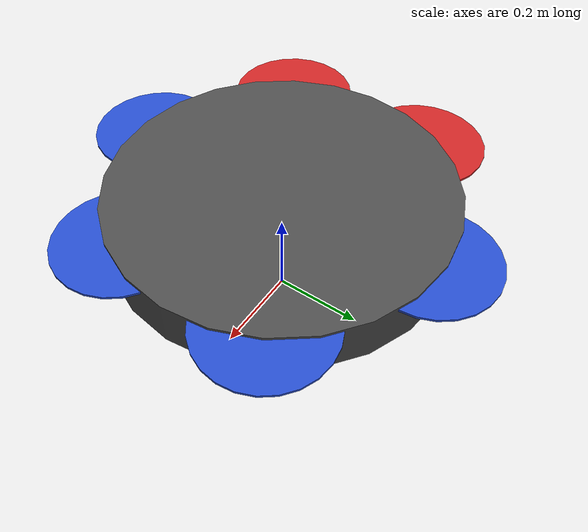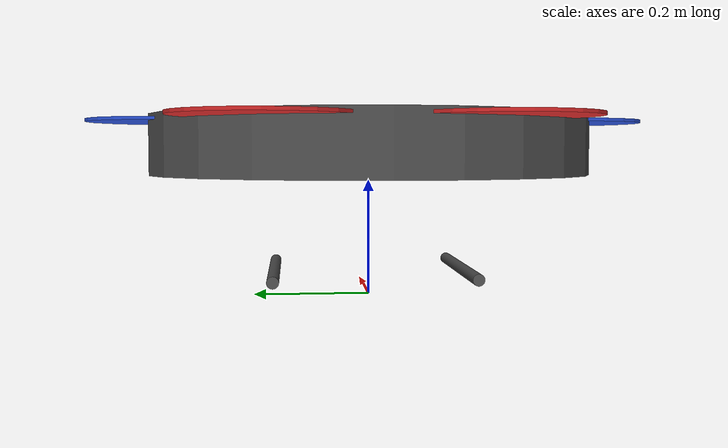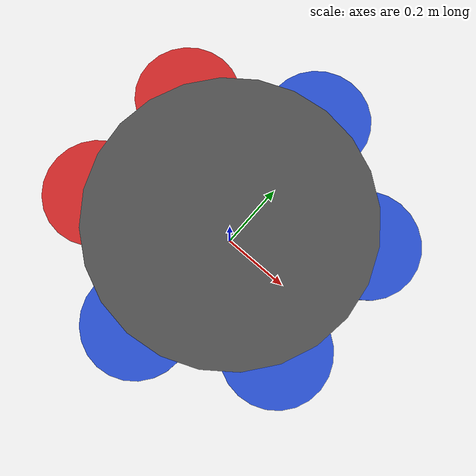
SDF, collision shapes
<sdf version='1.5'>
  <model name='peach_uav'>
    <!-- Peach H X body -->
    <pose>0 0 0.26 0 0 3.1415927</pose>
    <link name='base_link'>
      <pose>0 0 0 0 0 0</pose>
      <inertial>
        <pose>0 0 -0.008927 0 -0 0</pose>
        <mass>2.534</mass>
        <inertia>
          <ixx>0.0598893</ixx>
          <ixy>0</ixy>
          <ixz>0</ixz>
          <iyy>0.0617979</iyy>
          <iyz>0</iyz>
          <izz>0.0983314</izz>
        </inertia>
      </inertial>
      <collision name='base_link_collision'>
        <pose>0 0 0.0 0 0 0</pose>
        <geometry>
          <cylinder>
            <length>0.1</length>
            <radius>0.375</radius>
          </cylinder>
        </geometry>
        <surface>
          <contact>
            <ode>
              <min_depth>0.001</min_depth>
              <max_vel>0</max_vel>
            </ode>
          </contact>
          <friction>
            <ode/>
          </friction>
        </surface>
      </collision>
      <collision name='base_link_fixed_joint_lump__landinggear_leg_left_collision_1'>
        <pose frame=''>0 -0.165 -0.2175 3.14159 1.57079 3.14159</pose>
        <geometry>
          <cylinder>
            <length>0.3</length>
            <radius>0.01</radius>
          </cylinder>
        </geometry>
        <surface>
          <friction>
            <ode>
              <mu>1</mu>
              <mu2>1</mu2>
            </ode>
          </friction>
          <contact>
            <ode>
              <kp>1e+08</kp>
              <kd>1</kd>
              <max_vel>0.01</max_vel>
              <min_depth>0.001</min_depth>
            </ode>
          </contact>
        </surface>
      </collision>
      <collision name='base_link_fixed_joint_lump__landinggear_leg_right_collision_2'>
        <pose frame=''>0 0.165 -0.2175 3.14159 1.57079 3.14159</pose>
        <geometry>
          <cylinder>
            <length>0.3</length>
            <radius>0.01</radius>
          </cylinder>
        </geometry>
        <surface>
          <friction>
            <ode>
              <mu>1</mu>
              <mu2>1</mu2>
            </ode>
          </friction>
          <contact>
            <ode>
              <kp>1e+08</kp>
              <kd>1</kd>
              <max_vel>0.01</max_vel>
              <min_depth>0.001</min_depth>
            </ode>
          </contact>
        </surface>
      </collision>

      <visual name='base_link_visual'>
        <pose>0 0 0 1.5708 -0 -3.14159</pose>
        <geometry>
          <mesh>
            <scale>1 1 1</scale>
            <uri>model://peach_uav/meshes/tarot_iron_man_6800_full_meter.stl</uri>

          </mesh>
        </geometry>
        <material>
          <script>
            <name>Gazebo/DarkGrey</name>
            <uri>file://media/materials/scripts/gazebo.material</uri>
          </script>
        </material>
      </visual>

      <gravity>1</gravity>
      <velocity_decay/>
      <self_collide>0</self_collide>
    </link>

    <link name='peach_uav/imu_link'>
      <pose>0 0 0 0 0 3.1415927</pose>
      <inertial>
        <pose>0 0 0 0 0 0</pose>
        <mass>0.015</mass>
        <inertia>
          <ixx>1e-05</ixx>
          <ixy>0</ixy>
          <ixz>0</ixz>
          <iyy>1e-05</iyy>
          <iyz>0</iyz>
          <izz>1e-05</izz>
        </inertia>
      </inertial>
    </link>
    <joint name='peach_uav/imu_joint' type='revolute'>
      <child>peach_uav/imu_link</child>
      <parent>base_link</parent>
      <axis>
        <xyz>1 0 0</xyz>
        <limit>
          <lower>0</lower>
          <upper>0</upper>
          <effort>0</effort>
          <velocity>0</velocity>
        </limit>
        <dynamics>
          <spring_reference>0</spring_reference>
          <spring_stiffness>0</spring_stiffness>
        </dynamics>
        <use_parent_model_frame>1</use_parent_model_frame>
      </axis>
    </joint>
    <link name='rotor_3'>
      <pose>0.2966 0.1712 0.04175 0 -0 0</pose>
      <inertial>
        <pose>0 0 0 0 0 0</pose>
        <mass>0.0079</mass>
        <inertia>
          <ixx>9.75e-07</ixx>
          <ixy>0</ixy>
          <ixz>0</ixz>
          <iyy>4e-05</iyy>
          <iyz>0</iyz>
          <izz>4e-05</izz>
        </inertia>
      </inertial>
      <collision name='rotor_3_collision'>
        <pose>0 0 0 0 0 0</pose>
        <geometry>
          <cylinder>
            <length>0.005</length>
            <radius>0.1379</radius>
          </cylinder>
        </geometry>
        <surface>
          <contact>
            <ode/>
          </contact>
          <friction>
            <ode/>
          </friction>
        </surface>
      </collision>
      <visual name='rotor_3_visual'>
        <pose>0 0 0 1.5708 -0 0</pose>
        <geometry>
          <mesh>
            <scale>1 1 1</scale>
            <uri>model://peach_uav/meshes/prop_ccw.stl</uri>

          </mesh>
        </geometry>
        <material>
          <script>
            <name>Gazebo/Red</name>
            <uri>file://media/materials/scripts/gazebo.material</uri>
          </script>
        </material>
      </visual>
      <gravity>1</gravity>
      <velocity_decay/>
      <self_collide>0</self_collide>
    </link>
    <joint name='rotor_3_joint' type='revolute'>
      <child>rotor_3</child>
      <parent>base_link</parent>
      <axis>
        <xyz>0 0 1</xyz>
        <limit>
          <lower>-1e+16</lower>
          <upper>1e+16</upper>
          <effort>10</effort>
          <velocity>-1</velocity>
        </limit>
        <dynamics>
          <damping>0.005</damping>
        </dynamics>
        <use_parent_model_frame>1</use_parent_model_frame>
      </axis>
      <physics>
        <ode>
          <implicit_spring_damper>1</implicit_spring_damper>
        </ode>
      </physics>
    </joint>
    <link name='rotor_5'>
      <pose>-0.2966 0.1712 0.04175 0 -0 0</pose>
      <inertial>
        <pose>0 0 0 0 0 0</pose>
        <mass>0.0079</mass>
        <inertia>
          <ixx>9.75e-07</ixx>
          <ixy>0</ixy>
          <ixz>0</ixz>
          <iyy>4e-05</iyy>
          <iyz>0</iyz>
          <izz>4e-05</izz>
        </inertia>
      </inertial>
      <collision name='rotor_5_collision'>
        <pose>0 0 0 0 0 0</pose>
        <geometry>
          <cylinder>
            <length>0.005</length>
            <radius>0.1379</radius>
          </cylinder>
        </geometry>
        <surface>
          <contact>
            <ode/>
          </contact>
          <friction>
            <ode/>
          </friction>
        </surface>
      </collision>
      <visual name='rotor_5_visual'>
        <pose>0 0 0 1.5708 -0 0</pose>
        <geometry>
          <mesh>
            <scale>1 1 1</scale>
            <uri>model://peach_uav/meshes/prop_ccw.stl</uri>
          </mesh>
        </geometry>
        <material>
          <script>
            <name>Gazebo/Blue</name>
            <uri>file://media/materials/scripts/gazebo.material</uri>
          </script>
        </material>
      </visual>
      <gravity>1</gravity>
      <velocity_decay/>
      <self_collide>0</self_collide>
    </link>
    <joint name='rotor_5_joint' type='revolute'>
      <child>rotor_5</child>
      <parent>base_link</parent>
      <axis>
        <xyz>0 0 1</xyz>
        <limit>
          <lower>-1e+16</lower>
          <upper>1e+16</upper>
          <effort>10</effort>
          <velocity>-1</velocity>
        </limit>
        <dynamics>
          <damping>0.005</damping>
        </dynamics>
        <use_parent_model_frame>1</use_parent_model_frame>
      </axis>
      <physics>
        <ode>
          <implicit_spring_damper>1</implicit_spring_damper>
        </ode>
      </physics>
    </joint>
    <link name='rotor_4'>
      <pose>0 0.3425 0.04175 0 -0 0</pose>
      <inertial>
        <pose>0 0 0 0 0 0</pose>
        <mass>0.0079</mass>
        <inertia>
          <ixx>9.75e-07</ixx>
          <ixy>0</ixy>
          <ixz>0</ixz>
          <iyy>4e-05</iyy>
          <iyz>0</iyz>
          <izz>4e-05</izz>
        </inertia>
      </inertial>
      <collision name='rotor_4_collision'>
        <pose>0 0 0 0 0 0</pose>
        <geometry>
          <cylinder>
            <length>0.005</length>
            <radius>0.1379</radius>
          </cylinder>
        </geometry>
        <surface>
          <contact>
            <ode/>
          </contact>
          <friction>
            <ode/>
          </friction>
        </surface>
      </collision>
      <visual name='rotor_4_visual'>
        <pose>0 0 0 1.5708 -0 0</pose>
        <geometry>
          <mesh>
            <scale>1 1 1</scale>
            <uri>model://peach_uav/meshes/prop_cw.stl</uri>
          </mesh>
        </geometry>
        <material>
          <script>
            <name>Gazebo/Blue</name>
            <uri>file://media/materials/scripts/gazebo.material</uri>
          </script>
        </material>
      </visual>
      <gravity>1</gravity>
      <velocity_decay/>
      <self_collide>0</self_collide>
    </link>
    <joint name='rotor_4_joint' type='revolute'>
      <child>rotor_4</child>
      <parent>base_link</parent>
      <axis>
        <xyz>0 0 1</xyz>
        <limit>
          <lower>-1e+16</lower>
          <upper>1e+16</upper>
          <effort>10</effort>
          <velocity>-1</velocity>
        </limit>
        <dynamics>
          <damping>0.005</damping>
        </dynamics>
        <use_parent_model_frame>1</use_parent_model_frame>
      </axis>
      <physics>
        <ode>
          <implicit_spring_damper>1</implicit_spring_damper>
        </ode>
      </physics>
    </joint>
    <link name='rotor_2'>
      <pose>0.2966 -0.1712 0.04175 0 -0 0</pose>
      <inertial>
        <pose>0 0 0 0 0 0</pose>
        <mass>0.0079</mass>
        <inertia>
          <ixx>9.75e-07</ixx>
          <ixy>0</ixy>
          <ixz>0</ixz>
          <iyy>4e-05</iyy>
          <iyz>0</iyz>
          <izz>4e-05</izz>
        </inertia>
      </inertial>
      <collision name='rotor_2_collision'>
        <pose>0 0 0 0 0 0</pose>
        <geometry>
          <cylinder>
            <length>0.005</length>
            <radius>0.1379</radius>
          </cylinder>
        </geometry>
        <surface>
          <contact>
            <ode/>
          </contact>
          <friction>
            <ode/>
          </friction>
        </surface>
      </collision>
      <visual name='rotor_2_visual'>
        <pose>0 0 0 1.5708 -0 0</pose>
        <geometry>
          <mesh>
            <scale>1 1 1</scale>
            <uri>model://peach_uav/meshes/prop_cw.stl</uri>
          </mesh>
        </geometry>
        <material>
          <script>
            <name>Gazebo/Red</name>
            <uri>file://media/materials/scripts/gazebo.material</uri>
          </script>
        </material>
      </visual>
      <gravity>1</gravity>
      <velocity_decay/>
      <self_collide>0</self_collide>
    </link>
    <joint name='rotor_2_joint' type='revolute'>
      <child>rotor_2</child>
      <parent>base_link</parent>
      <axis>
        <xyz>0 0 1</xyz>
        <limit>
          <lower>-1e+16</lower>
          <upper>1e+16</upper>
          <effort>10</effort>
          <velocity>-1</velocity>
        </limit>
        <dynamics>
          <damping>0.005</damping>
        </dynamics>
        <use_parent_model_frame>1</use_parent_model_frame>
      </axis>
      <physics>
        <ode>
          <implicit_spring_damper>1</implicit_spring_damper>
        </ode>
      </physics>
    </joint>

    <link name='rotor_1'>
      <pose>0 -0.3425 0.04175 0 -0 0</pose>
      <inertial>
        <pose>0 0 0 0 0 0</pose>
        <mass>0.0079</mass>
        <inertia>
          <ixx>9.75e-07</ixx>
          <ixy>0</ixy>
          <ixz>0</ixz>
          <iyy>4e-05</iyy>
          <iyz>0</iyz>
          <izz>4e-05</izz>
        </inertia>
      </inertial>
      <collision name='rotor_1_collision'>
        <pose>0 0 0 0 0 0</pose>
        <geometry>
          <cylinder>
            <length>0.005</length>
            <radius>0.1379</radius>
          </cylinder>
        </geometry>
        <surface>
          <contact>
            <ode/>
          </contact>
          <friction>
            <ode/>
          </friction>
        </surface>
      </collision>
      <visual name='rotor_1_visual'>
        <pose>0 0 0 1.5708 -0 0</pose>
        <geometry>
          <mesh>
            <scale>1 1 1</scale>
            <uri>model://peach_uav/meshes/prop_ccw.stl</uri>
          </mesh>
        </geometry>
        <material>
          <script>
            <name>Gazebo/Blue</name>
            <uri>file://media/materials/scripts/gazebo.material</uri>
          </script>
        </material>
      </visual>
      <gravity>1</gravity>
      <velocity_decay/>
      <self_collide>0</self_collide>
    </link>
    <joint name='rotor_1_joint' type='revolute'>
      <child>rotor_1</child>
      <parent>base_link</parent>
      <axis>
        <xyz>0 0 1</xyz>
        <limit>
          <lower>-1e+16</lower>
          <upper>1e+16</upper>
          <effort>10</effort>
          <velocity>-1</velocity>
        </limit>
        <dynamics>
          <damping>0.005</damping>
        </dynamics>
        <use_parent_model_frame>1</use_parent_model_frame>
      </axis>
      <physics>
        <ode>
          <implicit_spring_damper>1</implicit_spring_damper>
        </ode>
      </physics>
    </joint>
    <link name='rotor_0'>
      <pose>-0.2966 -0.1712 0.04175 0 -0 0</pose>
      <inertial>
        <pose>0 0 0 0 0 0</pose>
        <mass>0.0079</mass>
        <inertia>
          <ixx>9.75e-07</ixx>
          <ixy>0</ixy>
          <ixz>0</ixz>
          <iyy>4e-05</iyy>
          <iyz>0</iyz>
          <izz>4e-05</izz>
        </inertia>
      </inertial>
      <collision name='rotor_0_collision'>
        <pose>0 0 0 0 0 0</pose>
        <geometry>
          <cylinder>
            <length>0.005</length>
            <radius>0.1379</radius>
          </cylinder>
        </geometry>
        <surface>
          <contact>
            <ode/>
          </contact>
          <friction>
            <ode/>
          </friction>
        </surface>
      </collision>
      <visual name='rotor_0_visual'>
        <pose>0 0 0 1.5708 -0 0</pose>
        <geometry>
          <mesh>
            <scale>1 1 1</scale>
            <uri>model://peach_uav/meshes/prop_cw.stl</uri>
          </mesh>
        </geometry>
        <material>
          <script>
            <name>Gazebo/Blue</name>
            <uri>file://media/materials/scripts/gazebo.material</uri>
          </script>
        </material>
      </visual>
      <gravity>1</gravity>
      <velocity_decay/>
      <self_collide>0</self_collide>
    </link>
    <joint name='rotor_0_joint' type='revolute'>
      <child>rotor_0</child>
      <parent>base_link</parent>
      <axis>
        <xyz>0 0 1</xyz>
        <limit>
          <lower>-1e+16</lower>
          <upper>1e+16</upper>
          <effort>10</effort>
          <velocity>-1</velocity>
        </limit>
        <dynamics>
          <damping>0.005</damping>
        </dynamics>
        <use_parent_model_frame>1</use_parent_model_frame>
      </axis>
      <physics>
        <ode>
          <implicit_spring_damper>1</implicit_spring_damper>
        </ode>
      </physics>
    </joint>

    <plugin name='rosbag' filename='libgazebo_multirotor_base_plugin.so'>
      <robotNamespace></robotNamespace>
      <linkName>base_link</linkName>
      <rotorVelocitySlowdownSim>10</rotorVelocitySlowdownSim>
    </plugin>
    <plugin name='front_right_motor_model' filename='libgazebo_motor_model.so'>
      <robotNamespace></robotNamespace>
      <jointName>rotor_5_joint</jointName>
      <linkName>rotor_5</linkName>
      <turningDirection>ccw</turningDirection>
      <timeConstantUp>0.0125</timeConstantUp>
      <timeConstantDown>0.025</timeConstantDown>
      <maxRotVelocity>1500</maxRotVelocity>
      <motorConstant>8.54858e-06</motorConstant>
      <momentConstant>0.06</momentConstant>
      <commandSubTopic>/gazebo/command/motor_speed</commandSubTopic>
      <motorNumber>4</motorNumber>
      <rotorDragCoefficient>0.000806428</rotorDragCoefficient>
      <rollingMomentCoefficient>1e-06</rollingMomentCoefficient>
      <motorSpeedPubTopic>/motor_speed/4</motorSpeedPubTopic>
      <rotorVelocitySlowdownSim>10</rotorVelocitySlowdownSim>

    </plugin>
    <plugin name='back_left_motor_model' filename='libgazebo_motor_model.so'>
      <robotNamespace></robotNamespace>
      <jointName>rotor_2_joint</jointName>
      <linkName>rotor_2</linkName>
      <turningDirection>cw</turningDirection>
      <timeConstantUp>0.0125</timeConstantUp>
      <timeConstantDown>0.025</timeConstantDown>
      <maxRotVelocity>1500</maxRotVelocity>
      <motorConstant>8.54858e-06</motorConstant>
      <momentConstant>0.06</momentConstant>
      <commandSubTopic>/gazebo/command/motor_speed</commandSubTopic>
      <motorNumber>5</motorNumber>
      <rotorDragCoefficient>0.000806428</rotorDragCoefficient>
      <rollingMomentCoefficient>1e-06</rollingMomentCoefficient>
      <motorSpeedPubTopic>/motor_speed/5</motorSpeedPubTopic>
      <rotorVelocitySlowdownSim>10</rotorVelocitySlowdownSim>

    </plugin>
    <plugin name='front_left_motor_model' filename='libgazebo_motor_model.so'>
      <robotNamespace></robotNamespace>
      <jointName>rotor_0_joint</jointName>
      <linkName>rotor_0</linkName>
      <turningDirection>cw</turningDirection>
      <timeConstantUp>0.0125</timeConstantUp>
      <timeConstantDown>0.025</timeConstantDown>
      <maxRotVelocity>1500</maxRotVelocity>
      <motorConstant>8.54858e-06</motorConstant>
      <momentConstant>0.06</momentConstant>
      <commandSubTopic>/gazebo/command/motor_speed</commandSubTopic>
      <motorNumber>2</motorNumber>
      <rotorDragCoefficient>0.000806428</rotorDragCoefficient>
      <rollingMomentCoefficient>1e-06</rollingMomentCoefficient>
      <motorSpeedPubTopic>/motor_speed/2</motorSpeedPubTopic>
      <rotorVelocitySlowdownSim>10</rotorVelocitySlowdownSim>

    </plugin>
    <plugin name='back_right_motor_model' filename='libgazebo_motor_model.so'>
      <robotNamespace></robotNamespace>
      <jointName>rotor_3_joint</jointName>
      <linkName>rotor_3</linkName>
      <turningDirection>ccw</turningDirection>
      <timeConstantUp>0.0125</timeConstantUp>
      <timeConstantDown>0.025</timeConstantDown>
      <maxRotVelocity>1500</maxRotVelocity>
      <motorConstant>8.54858e-06</motorConstant>
      <momentConstant>0.06</momentConstant>
      <commandSubTopic>/gazebo/command/motor_speed</commandSubTopic>
      <motorNumber>3</motorNumber>
      <rotorDragCoefficient>0.000806428</rotorDragCoefficient>
      <rollingMomentCoefficient>1e-06</rollingMomentCoefficient>
      <motorSpeedPubTopic>/motor_speed/3</motorSpeedPubTopic>
      <rotorVelocitySlowdownSim>10</rotorVelocitySlowdownSim>

    </plugin>
    <plugin name='back_left_motor_model' filename='libgazebo_motor_model.so'>
      <robotNamespace></robotNamespace>
      <jointName>rotor_4_joint</jointName>
      <linkName>rotor_4</linkName>
      <turningDirection>cw</turningDirection>
      <timeConstantUp>0.0125</timeConstantUp>
      <timeConstantDown>0.025</timeConstantDown>
      <maxRotVelocity>1500</maxRotVelocity>
      <motorConstant>8.54858e-06</motorConstant>
      <momentConstant>0.06</momentConstant>
      <commandSubTopic>/gazebo/command/motor_speed</commandSubTopic>
      <motorNumber>0</motorNumber>
      <rotorDragCoefficient>0.000806428</rotorDragCoefficient>
      <rollingMomentCoefficient>1e-06</rollingMomentCoefficient>
      <motorSpeedPubTopic>/motor_speed/0</motorSpeedPubTopic>
      <rotorVelocitySlowdownSim>10</rotorVelocitySlowdownSim>

    </plugin>
    <plugin name='front_left_motor_model' filename='libgazebo_motor_model.so'>
      <robotNamespace></robotNamespace>
      <jointName>rotor_1_joint</jointName>
      <linkName>rotor_1</linkName>
      <turningDirection>ccw</turningDirection>
      <timeConstantUp>0.0125</timeConstantUp>
      <timeConstantDown>0.025</timeConstantDown>
      <maxRotVelocity>1500</maxRotVelocity>
      <motorConstant>8.54858e-06</motorConstant>
      <momentConstant>0.06</momentConstant>
      <commandSubTopic>/gazebo/command/motor_speed</commandSubTopic>
      <motorNumber>1</motorNumber>
      <rotorDragCoefficient>0.000806428</rotorDragCoefficient>
      <rollingMomentCoefficient>1e-06</rollingMomentCoefficient>
      <motorSpeedPubTopic>/motor_speed/1</motorSpeedPubTopic>
      <rotorVelocitySlowdownSim>10</rotorVelocitySlowdownSim>

    </plugin>
    <plugin name="gps_plugin" filename="libgazebo_gps_plugin.so">
        <robotNamespace></robotNamespace>
        <gpsNoise>true</gpsNoise>
    </plugin>
    <plugin name='magnetometer_plugin' filename='libgazebo_magnetometer_plugin.so'>
      <robotNamespace/>
      <pubRate>20</pubRate>
      <noiseDensity>0.0004</noiseDensity>
      <randomWalk>6.4e-06</randomWalk>
      <biasCorrelationTime>600</biasCorrelationTime>
      <magTopic>/mag</magTopic>
    </plugin>
    <plugin name='barometer_plugin' filename='libgazebo_barometer_plugin.so'>
      <robotNamespace/>
      <pubRate>10</pubRate>
      <baroTopic>/baro</baroTopic>
    </plugin>
    <plugin name='mavlink_interface' filename='libgazebo_mavlink_interface.so'>
      <robotNamespace></robotNamespace>
      <imuSubTopic>/imu</imuSubTopic>
      <gpsSubTopic>/gps</gpsSubTopic>
      <magSubTopic>/mag</magSubTopic>
      <baroSubTopic>/baro</baroSubTopic>
      <mavlink_addr>INADDR_ANY</mavlink_addr>
      <mavlink_udp_port>14560</mavlink_udp_port>
      <serialEnabled>false</serialEnabled>
      <serialDevice>/dev/ttyACM0</serialDevice>
      <baudRate>921600</baudRate>
      <qgc_addr>INADDR_ANY</qgc_addr>
      <qgc_udp_port>14550</qgc_udp_port>
      <sdk_addr>INADDR_ANY</sdk_addr>
      <sdk_udp_port>14540</sdk_udp_port>
      <hil_mode>false</hil_mode>
      <hil_state_level>false</hil_state_level>
      <enable_lockstep>true</enable_lockstep>
      <use_tcp>true</use_tcp>
      <motorSpeedCommandPubTopic>/gazebo/command/motor_speed</motorSpeedCommandPubTopic>
      <control_channels>
        <channel name="rotor0">
          <input_index>0</input_index>
          <input_offset>0</input_offset>
          <input_scaling>1500</input_scaling>
          <zero_position_disarmed>0</zero_position_disarmed>
          <zero_position_armed>100</zero_position_armed>
          <joint_control_type>velocity</joint_control_type>

          <joint_name>rotor_4_joint</joint_name>
        </channel>
        <channel name="rotor1">
          <input_index>1</input_index>
          <input_offset>0</input_offset>
          <input_scaling>1500</input_scaling>
          <zero_position_disarmed>0</zero_position_disarmed>
          <zero_position_armed>100</zero_position_armed>
          <joint_control_type>velocity</joint_control_type>

          <joint_name>rotor_1_joint</joint_name>
        </channel>
        <channel name="rotor2">
          <input_index>2</input_index>
          <input_offset>0</input_offset>
          <input_scaling>1500</input_scaling>
          <zero_position_disarmed>0</zero_position_disarmed>
          <zero_position_armed>100</zero_position_armed>
          <joint_control_type>velocity</joint_control_type>

          <joint_name>rotor_0_joint</joint_name>
        </channel>
        <channel name="rotor3">
          <input_index>3</input_index>
          <input_offset>0</input_offset>
          <input_scaling>1500</input_scaling>
          <zero_position_disarmed>0</zero_position_disarmed>
          <zero_position_armed>100</zero_position_armed>
          <joint_control_type>velocity</joint_control_type>

          <joint_name>rotor_3_joint</joint_name>
        </channel>
        <channel name="rotor4">
          <input_index>4</input_index>
          <input_offset>0</input_offset>
          <input_scaling>1500</input_scaling>
          <zero_position_disarmed>0</zero_position_disarmed>
          <zero_position_armed>100</zero_position_armed>
          <joint_control_type>velocity</joint_control_type>

          <joint_name>rotor_5_joint</joint_name>
        </channel>
        <channel name="rotor5">
          <input_index>5</input_index>
          <input_offset>0</input_offset>
          <input_scaling>1500</input_scaling>
          <zero_position_disarmed>0</zero_position_disarmed>
          <zero_position_armed>100</zero_position_armed>
          <joint_control_type>velocity</joint_control_type>
          <joint_name>rotor_2_joint</joint_name>
        </channel>

        <channel name="left_leg">
          <input_index>9</input_index>
          <input_offset>1</input_offset>
          <input_scaling>0.5</input_scaling>
          <zero_position_disarmed>0</zero_position_disarmed>
          <zero_position_armed>0</zero_position_armed>
          <joint_control_type>position</joint_control_type>
          <joint_control_pid>
            <p>3.5</p>
            <i>0.5</i>
            <d>0</d>
            <iMax>4</iMax>
            <iMin>-4</iMin>
            <cmdMax>6</cmdMax>
            <cmdMin>-6</cmdMin>
          </joint_control_pid>
          <joint_name>left_leg_joint</joint_name>
        </channel>
        <channel name="right_leg">
          <input_index>10</input_index>
          <input_offset>1</input_offset>
          <input_scaling>0.5</input_scaling>
          <zero_position_disarmed>0</zero_position_disarmed>
          <zero_position_armed>0</zero_position_armed>
          <joint_control_type>position</joint_control_type>
          <joint_control_pid>
            <p>3.5</p>
            <i>0.5</i>
            <d>0</d>
            <iMax>4</iMax>
            <iMin>-4</iMin>
            <cmdMax>6</cmdMax>
            <cmdMin>-6</cmdMin>
          </joint_control_pid>
          <joint_name>right_leg_joint</joint_name>
        </channel>

      </control_channels>
    </plugin>
    <static>0</static>
    <plugin name='gazebo_imu_plugin' filename='libgazebo_imu_plugin.so'>
      <robotNamespace></robotNamespace>
      <linkName>peach_uav/imu_link</linkName>
      <imuTopic>/imu</imuTopic>
      <gyroscopeNoiseDensity>0.0003394</gyroscopeNoiseDensity>
      <gyroscopeRandomWalk>3.8785e-05</gyroscopeRandomWalk>
      <gyroscopeBiasCorrelationTime>1000.0</gyroscopeBiasCorrelationTime>
      <gyroscopeTurnOnBiasSigma>0.0087</gyroscopeTurnOnBiasSigma>
      <accelerometerNoiseDensity>0.004</accelerometerNoiseDensity>
      <accelerometerRandomWalk>0.006</accelerometerRandomWalk>
      <accelerometerBiasCorrelationTime>300.0</accelerometerBiasCorrelationTime>
      <accelerometerTurnOnBiasSigma>0.196</accelerometerTurnOnBiasSigma>
    </plugin>

  </model>
</sdf>
